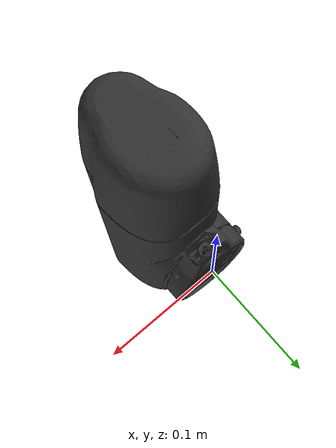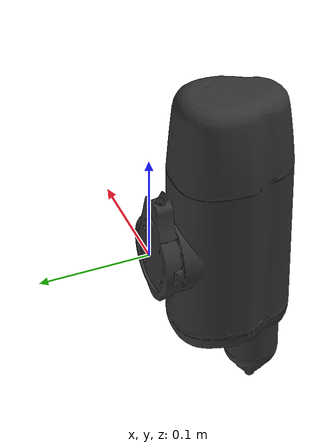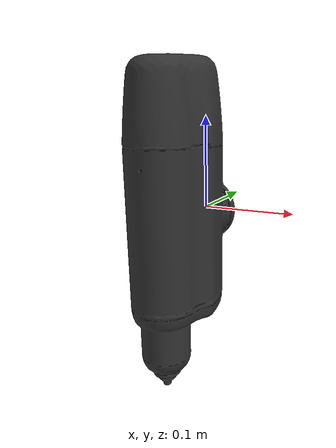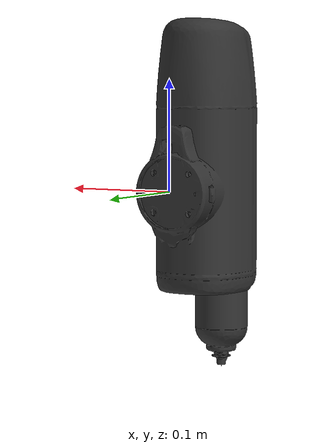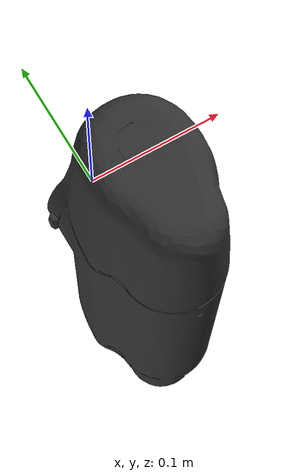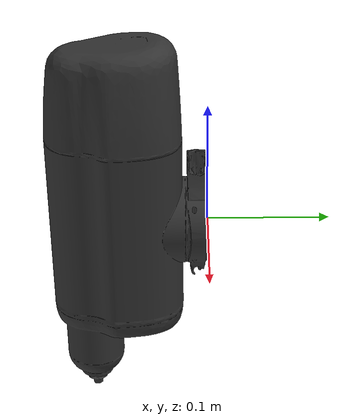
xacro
<?xml version="1.0"?>
<robot name="onrobot_sd" xmlns:xacro="http://ros.org/wiki/xacro">

  <link name="world" />

  <link name="base_link">
    <inertial>
      <origin rpy="0 0 0" xyz="0 0 0.04607"/>
      <mass value="2.5"/>
      <inertia ixx="1.22763e-05" iyy="1.22763e-05" izz="1.22763e-05" ixy="0.0" ixz="0.0" iyz="0.0" />
    </inertial>
    <visual>
      <origin xyz="0.0 0.0 0.0" rpy="0.0 0.0 0.0"/>
      <geometry>
        <mesh filename="package://onrobot_sd_description/meshes/visual/onrobot_sd.stl" scale="1 1 1"/>
      </geometry>
      <material name="">
        <color rgba="0.2 0.2 0.2 1" />
      </material>
    </visual>
    <collision>
      <origin xyz="0.0 0.0 0.0" rpy="0.0 0.0 0.0"/>
      <geometry>
        <mesh filename="package://onrobot_sd_description/meshes/collision/onrobot_sd.stl" scale="1 1 1"/>
      </geometry>
    </collision>
  </link>

  <joint name="world_fixed_joint" type="fixed">
    <origin xyz="0.0 0.0 0.0" rpy="0.0 0.0 0.0"/>
    <parent link="world"/>
    <child link="base_link"/>
  </joint>

</robot>
